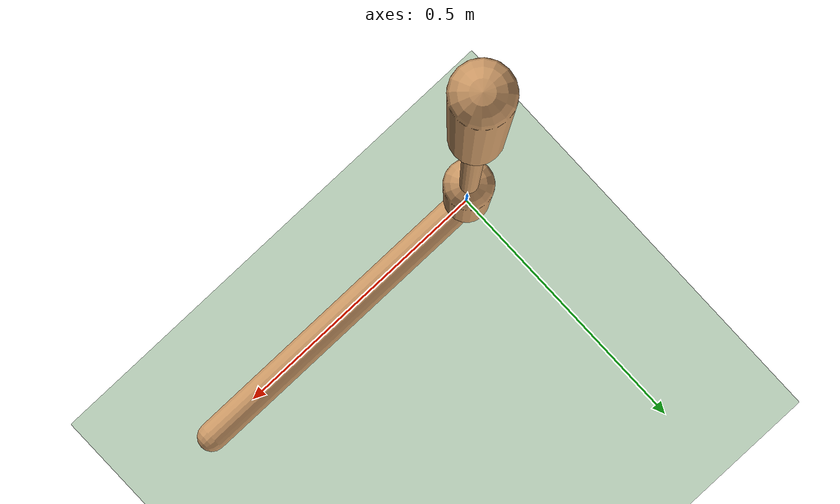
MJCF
<mujoco model="walker2d">
  <compiler angle="degree" inertiafromgeom="true" />
  <default>
    <joint armature="0.01" damping=".1" limited="true" />
    <geom conaffinity="0" condim="3" contype="1" density="1000" friction=".7 .1 .1" rgba="0.8 0.6 .4 1" />
  </default>
  <option integrator="RK4" timestep="0.002" />
  <worldbody>
    <light cutoff="100" diffuse="1 1 1" dir="-0 0 -1.3" directional="true" exponent="1" pos="0 0 1.3" specular=".1 .1 .1" />
    <geom conaffinity="1" condim="3" name="floor" pos="0 0 0" rgba="0.8 0.9 0.8 1" size="40 40 40" type="plane" material="MatPlane" />
    <body name="torso" pos="0 0 3.4603699803352357">
      <camera name="track" mode="trackcom" pos="0 -5 -1.25" xyaxes="1 0 0 0 0 1" />
      <joint armature="0" axis="1 0 0" damping="0" limited="false" name="rootx" pos="0 0 -1.25" stiffness="0" type="slide" />
      <joint armature="0" axis="0 0 1" damping="0" limited="false" name="rootz" pos="0 0 -1.25" ref="1.25" stiffness="0" type="slide" />
      <joint armature="0" axis="0 1 0" damping="0" limited="false" name="rooty" pos="0 0 0" stiffness="0" type="hinge" />
      <geom friction="0.9" name="torso_geom" size="0.03221267834305763 0.4955447316169739" type="capsule" />
      <body name="thigh" pos="0 0 -0.4955447316169739">
        <joint axis="0 -1 0" name="thigh_joint" pos="0 0 0" range="-150 0" type="hinge" />
        <site name="torso_thigh_site" pos="0 0 0" size="0.01" type="sphere" rgba="1 0 0 0.5" />
        <geom friction="0.9" pos="0 0 -0.9654529094696045" name="thigh_geom" size="0.014580275863409042 0.9654529094696045" type="capsule" />
        <body name="leg" pos="0 0 -2.3978655338287354">
          <joint axis="0 -1 0" name="leg_joint" pos="0 0 0.46695971488952637" range="-150 0" type="hinge" />
          <site name="thigh_leg_site" pos="0 0 0.25" size="0.01" type="sphere" rgba="1 0 0 0.5" />
          <geom friction="0.9" name="leg_geom" size="0.03959737718105316 0.46695971488952637" type="capsule" />
          <body name="foot" pos="0.5903265476226807 0 -0.5669597148895263">
            <joint axis="0 -1 0" name="foot_joint" pos="-0.5903265476226807 0 0.1" range="-45 45" type="hinge" />
            <site name="leg_foot_site" pos="-0.2 0 0.1" size="0.01" type="sphere" rgba="1 0 0 0.5" />
            <geom friction="0.9" pos="-0.29516327381134033 0 0.1" quat="0.70710678118654757 0 -0.70710678118654746 0" name="foot_geom" size="0.02551262080669403 0.29516327381134033" type="capsule" />
          </body>
        </body>
      </body>

      <body name="thigh_left" pos="0 0 -0.4955447316169739">
        <joint axis="0 -1 0" name="thigh_left_joint" pos="0 0 0" range="-150 0" type="hinge" />
        <site name="torso_thigh_left_site" pos="0 0 0" size="0.01" type="sphere" rgba="1 0 0 0.5" />
        <geom friction="0.9" name="thigh_left_geom" rgba=".7 .3 .6 1" size="0.014580275863409042 0.9654529094696045" pos="0 0 -0.9654529094696045" type="capsule" />
        <body name="leg_left" pos="0 0 -2.3978655338287354">
          <joint axis="0 -1 0" name="leg_left_joint" pos="0 0 0.46695971488952637" range="-150 0" type="hinge" />
          <site name="thigh_leg_left_site" pos="0 0 0.25" size="0.01" type="sphere" rgba="1 0 0 0.5" />
          <geom friction="0.9" name="leg_left_geom" rgba=".7 .3 .6 1" size="0.03959737718105316 0.46695971488952637" type="capsule" />
          <body name="foot_left" pos="0.5903265476226807 0 -0.5669597148895263">
            <joint axis="0 -1 0" name="foot_left_joint" pos="-0.5903265476226807 0 0.1" range="-45 45" type="hinge" />
            <site name="leg_foot_left_site" pos="-0.2 0 0.1" size="0.01" type="sphere" rgba="1 0 0 0.5" />
            <geom friction="1.9" name="foot_left_geom" rgba=".7 .3 .6 1" size="0.02551262080669403 0.29516327381134033" pos="-0.29516327381134033 0 0.1" type="capsule" quat="0.70710678118654757 0 -0.70710678118654746 0" />
          </body>
        </body>
      </body>
    </body>
  </worldbody>
  <actuator>

    <motor ctrllimited="true" ctrlrange="-1.0 1.0" gear="36.4871591488253" joint="thigh_joint" />
    <motor ctrllimited="true" ctrlrange="-1.0 1.0" gear="183.04263736276988" joint="leg_joint" />
    <motor ctrllimited="true" ctrlrange="-1.0 1.0" gear="53.36665303904311" joint="foot_joint" />
    <motor ctrllimited="true" ctrlrange="-1.0 1.0" gear="36.4871591488253" joint="thigh_left_joint" />
    <motor ctrllimited="true" ctrlrange="-1.0 1.0" gear="183.04263736276988" joint="leg_left_joint" />
    <motor ctrllimited="true" ctrlrange="-1.0 1.0" gear="53.36665303904311" joint="foot_left_joint" />

  </actuator>
    <asset>
        <texture type="skybox" builtin="gradient" rgb1=".4 .5 .6" rgb2="0 0 0" width="100" height="100" />
        <texture builtin="flat" height="1278" mark="cross" markrgb="1 1 1" name="texgeom" random="0.01" rgb1="0.8 0.6 0.4" rgb2="0.8 0.6 0.4" type="cube" width="127" />
        <texture builtin="checker" height="100" name="texplane" rgb1="0 0 0" rgb2="0.8 0.8 0.8" type="2d" width="100" />
        <material name="MatPlane" reflectance="0.5" shininess="1" specular="1" texrepeat="60 60" texture="texplane" />
        <material name="geom" texture="texgeom" texuniform="true" />
    </asset>

  <sensor>
    <force site="torso_thigh_site" name="torso_thigh_sensor" />
    <force site="thigh_leg_site" name="thigh_leg_sensor" />
    <force site="leg_foot_site" name="leg_foot_sensor" />
    <force site="torso_thigh_left_site" name="torso_thigh_left_sensor" />
    <force site="thigh_leg_left_site" name="thigh_leg_left_sensor" />
    <force site="leg_foot_left_site" name="leg_foot_left_sensor" />
  </sensor>
</mujoco>
